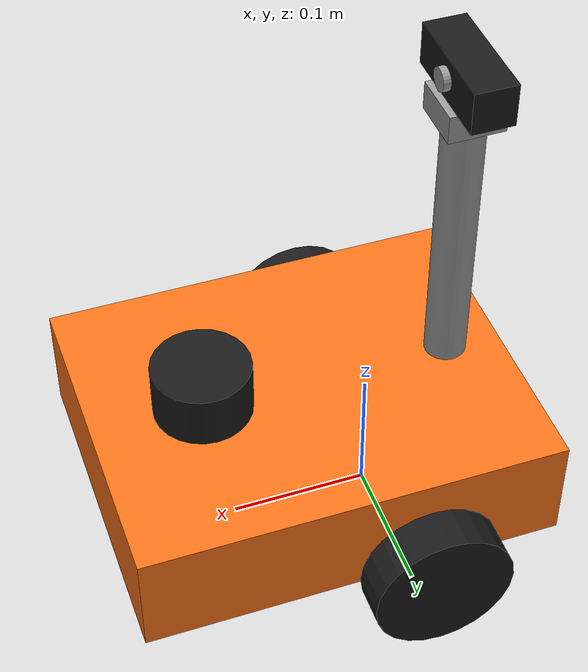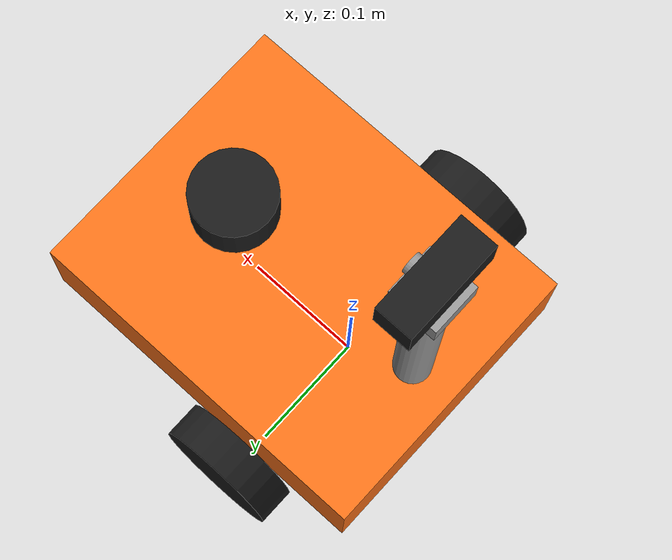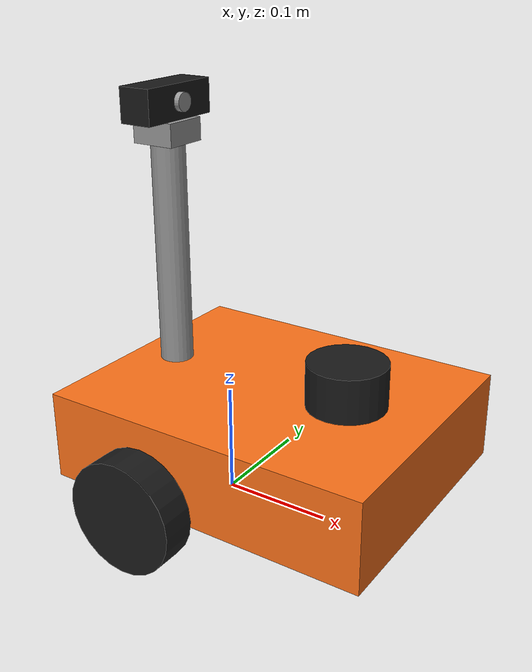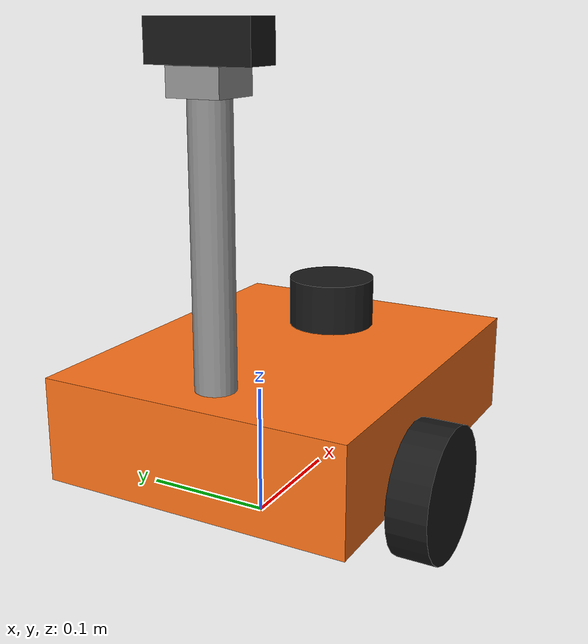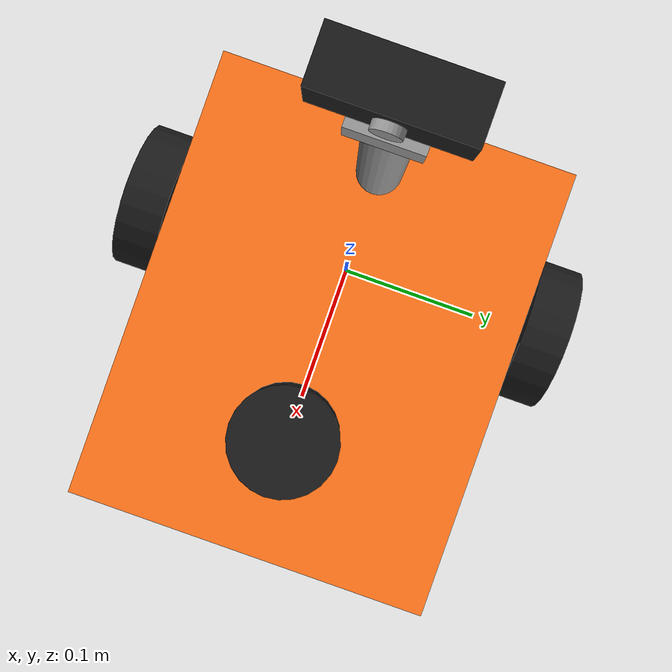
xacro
<?xml version="1.0"?>
<!-- m4bot for Gazebo: the Lesson 3 description, the simulated sensors, and Gazebo's own
     plugins for driving the wheels and reporting and holding the joints. -->
<robot name="m4bot" xmlns:xacro="http://www.ros.org/wiki/xacro">

  <xacro:include filename="$(find m4_description)/urdf/robot.urdf.xacro"/>
  <xacro:include filename="$(find m4_gazebo)/urdf/sensors.gazebo.xacro"/>

  <gazebo>
    <!-- drive: listens on cmd_vel, publishes odom and the odom -> base_footprint transform.
         Lesson 5 replaces this plugin with ros2_control. -->
    <plugin filename="gz-sim-diff-drive-system" name="gz::sim::systems::DiffDrive">
      <left_joint>left_wheel_joint</left_joint>
      <right_joint>right_wheel_joint</right_joint>
      <wheel_separation>${wheel_separation}</wheel_separation>
      <wheel_radius>${wheel_radius}</wheel_radius>
      <topic>cmd_vel</topic>
      <odom_topic>odom</odom_topic>
      <tf_topic>tf</tf_topic>
      <frame_id>odom</frame_id>
      <child_frame_id>base_footprint</child_frame_id>
      <odom_publish_frequency>30</odom_publish_frequency>
    </plugin>
    <!-- report every joint's position, so robot_state_publisher can publish the TF -->
    <plugin filename="gz-sim-joint-state-publisher-system" name="gz::sim::systems::JointStatePublisher">
      <topic>joint_states</topic>
    </plugin>
    <!-- hold the pan-tilt head where it is told (otherwise gravity tips the camera over) -->
    <plugin filename="gz-sim-joint-position-controller-system" name="gz::sim::systems::JointPositionController">
      <joint_name>pan_joint</joint_name>
      <topic>pan_cmd</topic>
      <p_gain>2.0</p_gain>
      <d_gain>0.05</d_gain>
    </plugin>
    <plugin filename="gz-sim-joint-position-controller-system" name="gz::sim::systems::JointPositionController">
      <joint_name>tilt_joint</joint_name>
      <topic>tilt_cmd</topic>
      <p_gain>2.0</p_gain>
      <d_gain>0.05</d_gain>
    </plugin>
  </gazebo>

</robot>

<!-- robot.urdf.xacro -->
<!-- m4bot: a differential-drive base, a lidar, and a pan-tilt camera head on a mast.
     All lengths in metres, masses in kilograms, angles in radians. -->
<robot name="m4bot" xmlns:xacro="http://www.ros.org/wiki/xacro">

  <xacro:include filename="inertial_macros.xacro"/>

  <!-- ===== dimensions: change these, everything else follows ===== -->
  <xacro:property name="chassis_x" value="0.30"/>
  <xacro:property name="chassis_y" value="0.24"/>
  <xacro:property name="chassis_z" value="0.08"/>
  <xacro:property name="chassis_mass" value="2.0"/>
  <xacro:property name="chassis_offset_x" value="0.05"/>   <!-- chassis centre ahead of the axle -->
  <xacro:property name="wheel_radius" value="0.05"/>
  <xacro:property name="wheel_width" value="0.03"/>
  <xacro:property name="wheel_mass" value="0.2"/>
  <xacro:property name="wheel_separation" value="0.28"/>   <!-- centre to centre -->
  <xacro:property name="caster_radius" value="0.025"/>
  <xacro:property name="mast_height" value="0.20"/>
  <xacro:property name="chassis_top" value="${chassis_z - 0.01}"/>  <!-- top face, above base_link -->

  <!-- base_footprint: on the floor, under the axle centre. base_link: the axle centre. -->
  <link name="base_footprint"/>
  <joint name="base_joint" type="fixed">
    <parent link="base_footprint"/>
    <child link="base_link"/>
    <origin xyz="0 0 ${wheel_radius}"/>
  </joint>

  <link name="base_link">
    <visual>
      <origin xyz="${chassis_offset_x} 0 ${chassis_z/2 - 0.01}"/>
      <geometry><box size="${chassis_x} ${chassis_y} ${chassis_z}"/></geometry>
      <material name="orange"><color rgba="1.0 0.45 0.1 1"/></material>
    </visual>
    <collision>
      <origin xyz="${chassis_offset_x} 0 ${chassis_z/2 - 0.01}"/>
      <geometry><box size="${chassis_x} ${chassis_y} ${chassis_z}"/></geometry>
    </collision>
    <xacro:inertial_box mass="${chassis_mass}" x="${chassis_x}" y="${chassis_y}" z="${chassis_z}">
      <origin xyz="${chassis_offset_x} 0 ${chassis_z/2 - 0.01}"/>
    </xacro:inertial_box>
  </link>

  <!-- one macro, two wheels: reflect = +1 for left (+y), -1 for right -->
  <xacro:macro name="wheel" params="side reflect">
    <link name="${side}_wheel_link">
      <visual>
        <origin rpy="${-pi/2} 0 0"/>
        <geometry><cylinder radius="${wheel_radius}" length="${wheel_width}"/></geometry>
        <material name="black"><color rgba="0.1 0.1 0.1 1"/></material>
      </visual>
      <collision>
        <origin rpy="${-pi/2} 0 0"/>
        <geometry><cylinder radius="${wheel_radius}" length="${wheel_width}"/></geometry>
      </collision>
      <xacro:inertial_cylinder mass="${wheel_mass}" radius="${wheel_radius}" length="${wheel_width}">
        <origin rpy="${-pi/2} 0 0"/>
      </xacro:inertial_cylinder>
    </link>
    <joint name="${side}_wheel_joint" type="continuous">
      <parent link="base_link"/>
      <child link="${side}_wheel_link"/>
      <origin xyz="0 ${reflect * wheel_separation/2} 0"/>
      <axis xyz="0 1 0"/>   <!-- positive rotation drives the robot forward on both sides -->
    </joint>
  </xacro:macro>
  <xacro:wheel side="left" reflect="1"/>
  <xacro:wheel side="right" reflect="-1"/>

  <!-- caster: a sphere touching the floor; visual and collision are the same ball -->
  <link name="caster_link">
    <visual>
      <geometry><sphere radius="${caster_radius}"/></geometry>
      <material name="grey"><color rgba="0.6 0.6 0.6 1"/></material>
    </visual>
    <collision>
      <geometry><sphere radius="${caster_radius}"/></geometry>
    </collision>
    <xacro:inertial_sphere mass="0.05" radius="${caster_radius}">
      <origin xyz="0 0 0"/>
    </xacro:inertial_sphere>
  </link>
  <joint name="caster_joint" type="fixed">
    <parent link="base_link"/>
    <child link="caster_link"/>
    <origin xyz="0.16 0 ${caster_radius - wheel_radius}"/>
  </joint>

  <!-- lidar: a fixed (static) transform on the front of the chassis.
       Its link name is the frame_id the lidar driver must use. -->
  <link name="lidar_link">
    <visual>
      <geometry><cylinder radius="0.035" length="0.04"/></geometry>
      <material name="black"/>
    </visual>
    <collision>
      <geometry><cylinder radius="0.035" length="0.04"/></geometry>
    </collision>
    <xacro:inertial_cylinder mass="0.1" radius="0.035" length="0.04">
      <origin xyz="0 0 0"/>
    </xacro:inertial_cylinder>
  </link>
  <joint name="lidar_joint" type="fixed">
    <parent link="base_link"/>
    <child link="lidar_link"/>
    <origin xyz="0.12 0 ${chassis_top + 0.02}"/>
  </joint>

  <!-- mast at the back of the chassis -->
  <link name="mast_link">
    <visual>
      <origin xyz="0 0 ${mast_height/2}"/>
      <geometry><cylinder radius="0.015" length="${mast_height}"/></geometry>
      <material name="grey"/>
    </visual>
    <collision>
      <origin xyz="0 0 ${mast_height/2}"/>
      <geometry><cylinder radius="0.015" length="${mast_height}"/></geometry>
    </collision>
    <xacro:inertial_cylinder mass="0.1" radius="0.015" length="${mast_height}">
      <origin xyz="0 0 ${mast_height/2}"/>
    </xacro:inertial_cylinder>
  </link>
  <joint name="mast_joint" type="fixed">
    <parent link="base_link"/>
    <child link="mast_link"/>
    <origin xyz="-0.06 0 ${chassis_top}"/>
  </joint>

  <!-- pan-tilt head: pan turns about z, tilt about y -->
  <link name="pan_link">
    <visual>
      <origin xyz="0 0 0.01"/>
      <geometry><box size="0.04 0.04 0.02"/></geometry>
      <material name="grey"/>
    </visual>
    <collision>
      <origin xyz="0 0 0.01"/>
      <geometry><box size="0.04 0.04 0.02"/></geometry>
    </collision>
    <xacro:inertial_box mass="0.05" x="0.04" y="0.04" z="0.02">
      <origin xyz="0 0 0.01"/>
    </xacro:inertial_box>
  </link>
  <joint name="pan_joint" type="revolute">
    <parent link="mast_link"/>
    <child link="pan_link"/>
    <origin xyz="0 0 ${mast_height}"/>
    <axis xyz="0 0 1"/>
    <limit lower="${-pi/2}" upper="${pi/2}" effort="1.0" velocity="2.0"/>
  </joint>

  <!-- the camera body: a detailed shape for looks, a plain box for collisions -->
  <link name="tilt_link">
    <visual>
      <geometry><box size="0.03 0.08 0.03"/></geometry>
      <material name="black"/>
    </visual>
    <visual>
      <origin xyz="0.017 0 0" rpy="0 ${pi/2} 0"/>
      <geometry><cylinder radius="0.008" length="0.006"/></geometry>   <!-- lens -->
      <material name="grey"/>
    </visual>
    <collision>
      <geometry><box size="0.04 0.08 0.03"/></geometry>
    </collision>
    <xacro:inertial_box mass="0.05" x="0.03" y="0.08" z="0.03">
      <origin xyz="0 0 0"/>
    </xacro:inertial_box>
  </link>
  <joint name="tilt_joint" type="revolute">
    <parent link="pan_link"/>
    <child link="tilt_link"/>
    <origin xyz="0 0 0.035"/>
    <axis xyz="0 1 0"/>
    <limit lower="-0.8" upper="0.8" effort="1.0" velocity="2.0"/>
  </joint>

  <!-- camera_link: x forward (ROS body convention).
       camera_optical_link: z forward, x right, y down (what image drivers expect). -->
  <link name="camera_link"/>
  <joint name="camera_joint" type="fixed">
    <parent link="tilt_link"/>
    <child link="camera_link"/>
    <origin xyz="0.02 0 0"/>
  </joint>
  <link name="camera_optical_link"/>
  <joint name="camera_optical_joint" type="fixed">
    <parent link="camera_link"/>
    <child link="camera_optical_link"/>
    <origin rpy="${-pi/2} 0 ${-pi/2}"/>
  </joint>

</robot>

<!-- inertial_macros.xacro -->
<!-- Inertia of simple solids (uniform density), about the centre of mass.
     Each macro takes the same pose as the geometry it belongs to. -->
<robot xmlns:xacro="http://www.ros.org/wiki/xacro">

  <xacro:macro name="inertial_box" params="mass x y z *origin">
    <inertial>
      <xacro:insert_block name="origin"/>
      <mass value="${mass}"/>
      <inertia ixx="${mass / 12 * (y*y + z*z)}" ixy="0" ixz="0"
               iyy="${mass / 12 * (x*x + z*z)}" iyz="0"
               izz="${mass / 12 * (x*x + y*y)}"/>
    </inertial>
  </xacro:macro>

  <!-- cylinder along its local z axis -->
  <xacro:macro name="inertial_cylinder" params="mass radius length *origin">
    <inertial>
      <xacro:insert_block name="origin"/>
      <mass value="${mass}"/>
      <inertia ixx="${mass / 12 * (3*radius*radius + length*length)}" ixy="0" ixz="0"
               iyy="${mass / 12 * (3*radius*radius + length*length)}" iyz="0"
               izz="${mass / 2 * radius*radius}"/>
    </inertial>
  </xacro:macro>

  <xacro:macro name="inertial_sphere" params="mass radius *origin">
    <inertial>
      <xacro:insert_block name="origin"/>
      <mass value="${mass}"/>
      <inertia ixx="${2 / 5 * mass * radius*radius}" ixy="0" ixz="0"
               iyy="${2 / 5 * mass * radius*radius}" iyz="0"
               izz="${2 / 5 * mass * radius*radius}"/>
    </inertial>
  </xacro:macro>

</robot>
